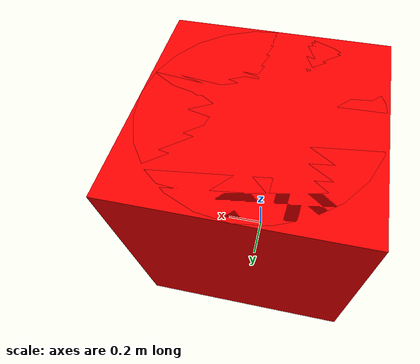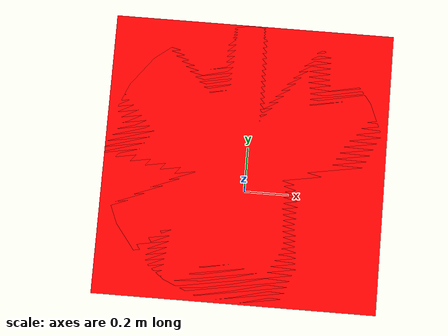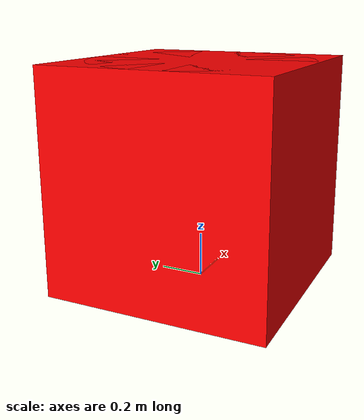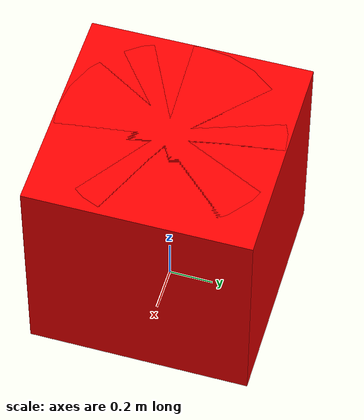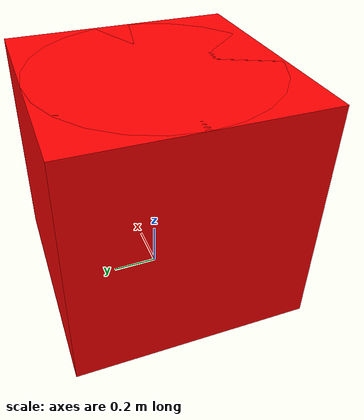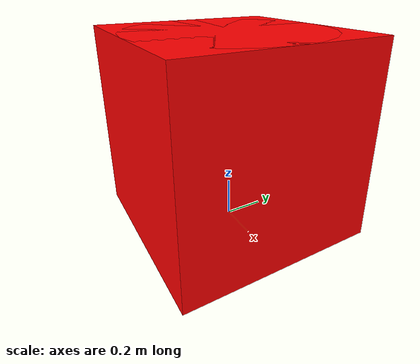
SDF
<sdf version="1.4">
  <world name="default">

    <!-- Red -->
    <!-- Red -->
    <!-- Red -->
    <!-- Red -->

    <!-- Red Sphere -->
    <model name="red_sphere">
      <static>0</static>
      <pose>0 0 0.5 0 0 0</pose>
      <link name="sphere_link">
        <collision name="sphere_collision">
          <geometry>
            <sphere>
              <radius>0.5</radius>
            </sphere>
          </geometry>
          <surface>
            <contact>
              <collide_bitmask>0x01</collide_bitmask>
            </contact>
          </surface>
        </collision>
        <visual name="sphere_visual">
          <geometry>
            <sphere>
              <radius>0.5</radius>
            </sphere>
          </geometry>
          <material>
            <ambient>1 0 0 1</ambient> <!-- 빨간색 -->
            <diffuse>1 0 0 1</diffuse>
          </material>
        </visual>
      </link>
    </model>

    <!-- red Cylinder -->
    <model name="red_cylinder">
      <static>0</static>
      <pose> 0 0 0.5 0 0 0</pose>
      <link name="cylinder_link">
        <collision name="cylinder_collision">
          <geometry>
            <cylinder>
              <radius>0.5</radius>
              <length>1.0</length>
            </cylinder>
          </geometry>
          <surface>
            <contact>
              <collide_bitmask>0x01</collide_bitmask>
            </contact>
          </surface>
        </collision>
        <visual name="cylinder_visual">
          <geometry>
            <cylinder>
              <radius>0.5</radius>
              <length>1.0</length>
            </cylinder>
          </geometry>
          <material>
            <ambient>1 0 0 1</ambient> <!-- 빨간색 -->
            <diffuse>1 0 0 1</diffuse>
          </material>
        </visual>
      </link>
    </model>

    <!-- red Box -->
    <model name="red_box">
      <static>0</static>
      <pose>0 0 0.5 0 0 0</pose>
      <link name="box_link">
        <collision name="box_collision">
          <geometry>
            <box>
              <size>1.0 1.0 1.0</size>
            </box>
          </geometry>
          <surface>
            <contact>
              <collide_bitmask>0x01</collide_bitmask>
            </contact>
          </surface>
        </collision>
        <visual name="box_visual">
          <geometry>
            <box>
              <size>1.0 1.0 1.0</size>
            </box>
          </geometry>
          <material>
            <ambient>1 0 0 1</ambient>
            <diffuse>1 0 0 1</diffuse>
          </material>
        </visual>
      </link>
    </model>

    <!-- Yellow -->
    <!-- Yellow -->
    <!-- Yellow -->
    <!-- Yellow -->

    <!-- Yellow Sphere -->
    <model name="yellow_sphere">
      <static>0</static>
      <pose>0 0 0.5 0 0 0</pose>
      <link name="sphere_link">
        <collision name="sphere_collision">
          <geometry>
            <sphere>
              <radius>0.5</radius>
            </sphere>
          </geometry>
          <surface>
            <contact>
              <collide_bitmask>0x01</collide_bitmask>
            </contact>
          </surface>
        </collision>
        <visual name="sphere_visual">
          <geometry>
            <sphere>
              <radius>0.5</radius>
            </sphere>
          </geometry>
          <material>
            <ambient>1 1 0 1</ambient> <!-- 노란색 -->
            <diffuse>1 1 0 1</diffuse>
          </material>
        </visual>
      </link>
    </model>

    <!-- Yellow Cylinder -->
    <model name="yellow_cylinder">
      <static>0</static>
      <pose> 0 0 0.5 0 0 0</pose>
      <link name="cylinder_link">
        <collision name="cylinder_collision">
          <geometry>
            <cylinder>
              <radius>0.5</radius>
              <length>1.0</length>
            </cylinder>
          </geometry>
          <surface>
            <contact>
              <collide_bitmask>0x01</collide_bitmask>
            </contact>
          </surface>
        </collision>
        <visual name="cylinder_visual">
          <geometry>
            <cylinder>
              <radius>0.5</radius>
              <length>1.0</length>
            </cylinder>
          </geometry>
          <material>
            <ambient>1 1 0 1</ambient> <!-- 노란색 -->
            <diffuse>1 1 0 1</diffuse>
          </material>
        </visual>
      </link>
    </model>

    <!-- Yellow Box -->
    <model name="yellow_box">
      <static>0</static>
      <pose>0 0 0.5 0 0 0</pose>
      <link name="box_link">
        <collision name="box_collision">
          <geometry>
            <box>
              <size>1.0 1.0 1.0</size>
            </box>
          </geometry>
          <surface>
            <contact>
              <collide_bitmask>0x01</collide_bitmask>
            </contact>
          </surface>
        </collision>
        <visual name="box_visual">
          <geometry>
            <box>
              <size>1.0 1.0 1.0</size>
            </box>
          </geometry>
          <material>
            <ambient>1 1 0 1</ambient> <!-- 노란색 -->
            <diffuse>1 1 0 1</diffuse>
          </material>
        </visual>
      </link>
    </model>

    <!-- Green -->
    <!-- Green -->
    <!-- Green -->
    <!-- Green -->

    <!-- Green Sphere -->
    <model name="green_sphere">
      <static>0</static>
      <pose>0 0 0.5 0 0 0</pose>
      <link name="sphere_link">
        <collision name="sphere_collision">
          <geometry>
            <sphere>
              <radius>0.5</radius>
            </sphere>
          </geometry>
          <surface>
            <contact>
              <collide_bitmask>0x01</collide_bitmask>
            </contact>
          </surface>
        </collision>
        <visual name="sphere_visual">
          <geometry>
            <sphere>
              <radius>0.5</radius>
            </sphere>
          </geometry>
          <material>
            <ambient>0 1 0 1</ambient> <!-- 초록색 -->
            <diffuse>0 1 0 1</diffuse>
          </material>
        </visual>
      </link>
    </model>

    <!-- Green Cylinder -->
    <model name="green_cylinder">
      <static>0</static>
      <pose> 0 0 0.5 0 0 0</pose>
      <link name="cylinder_link">
        <collision name="cylinder_collision">
          <geometry>
            <cylinder>
              <radius>0.5</radius>
              <length>1.0</length>
            </cylinder>
          </geometry>
          <surface>
            <contact>
              <collide_bitmask>0x01</collide_bitmask>
            </contact>
          </surface>
        </collision>
        <visual name="cylinder_visual">
          <geometry>
            <cylinder>
              <radius>0.5</radius>
              <length>1.0</length>
            </cylinder>
          </geometry>
          <material>
            <ambient>0 1 0 1</ambient> <!-- 초록색 -->
            <diffuse>0 1 0 1</diffuse>
          </material>
        </visual>
      </link>
    </model>

    <!-- Green Box -->
    <model name="green_box">
      <static>0</static>
      <pose>0 0 0.5 0 0 0</pose>
      <link name="box_link">
        <collision name="box_collision">
          <geometry>
            <box>
              <size>1.0 1.0 1.0</size>
            </box>
          </geometry>
          <surface>
            <contact>
              <collide_bitmask>0x01</collide_bitmask>
            </contact>
          </surface>
        </collision>
        <visual name="box_visual">
          <geometry>
            <box>
              <size>1.0 1.0 1.0</size>
            </box>
          </geometry>
          <material>
            <ambient>0 1 0 1</ambient>
            <diffuse>0 1 0 1</diffuse>
          </material>
        </visual>
      </link>
    </model>

  </world>
</sdf>
